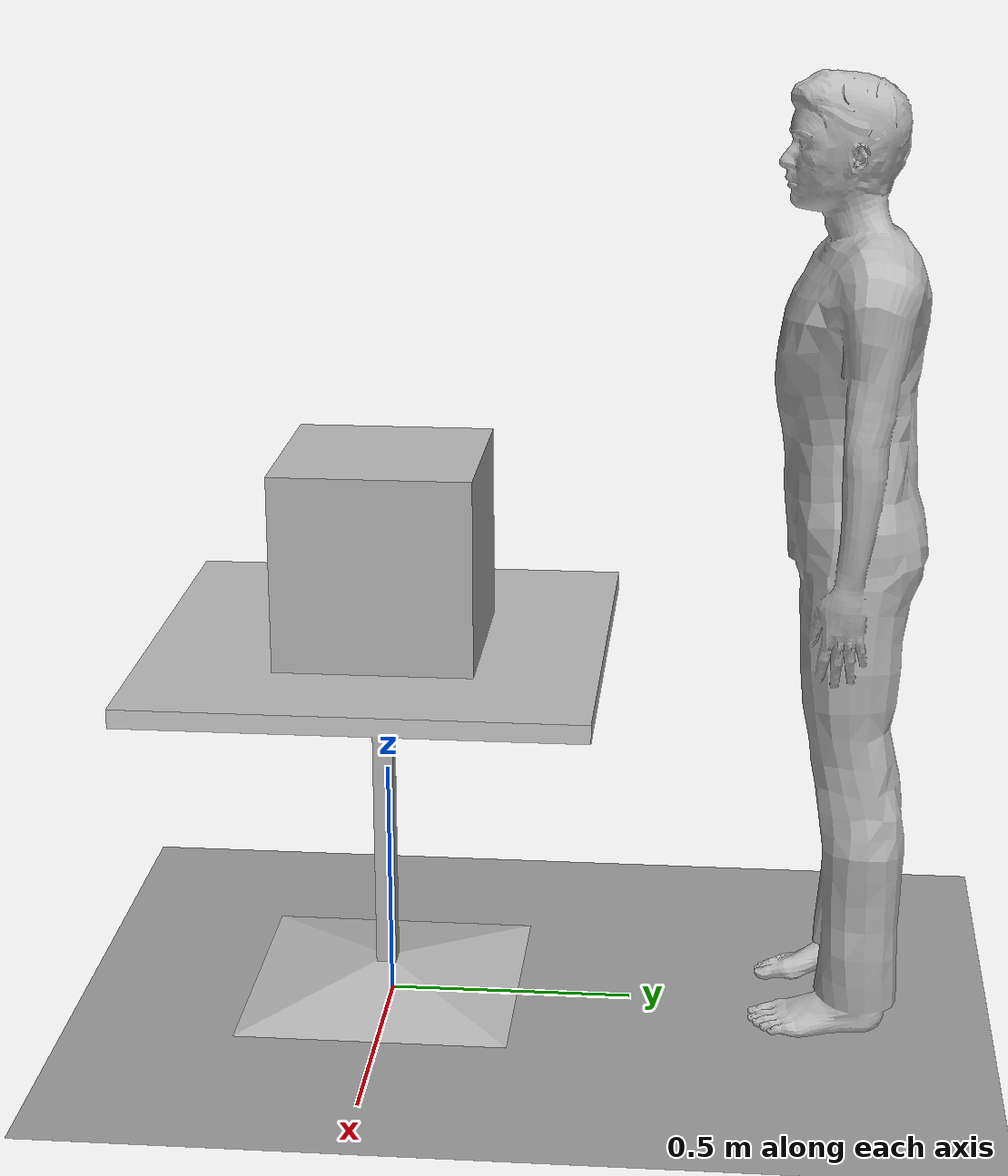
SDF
<sdf version="1.6">
 <world name="default">
  <light name="sun" type="directional">
   <pose>0 0 10 0 -0 0</pose>
   <diffuse>0.8 0.8 0.8 1</diffuse>
   <specular>0.1 0.1 0.1 1</specular>
   <attenuation>
    <range>1000</range>
    <constant>0.9</constant>
    <linear>0.01</linear>
    <quadratic>0.001</quadratic>
   </attenuation>
   <direction>-0.5 0.5 -1</direction>
  </light>
  <gravity>0 0 -9.8</gravity>
  <magnetic_field>6e-06 2.3e-05 -4.2e-05</magnetic_field>
  <atmosphere type="adiabatic"/>
  <physics name="default_physics" default="0" type="ode">
   <max_step_size>0.001</max_step_size>
   <real_time_factor>1</real_time_factor>
   <real_time_update_rate>1000</real_time_update_rate>
  </physics>
  <scene><ambient>0.4 0.4 0.4 1</ambient><background>0.7 0.7 0.7 1</background><shadows>1</shadows></scene>
  <spherical_coordinates>
   <surface_model>EARTH_WGS84</surface_model>
   <latitude_deg>0</latitude_deg>
   <longitude_deg>0</longitude_deg>
   <elevation>0</elevation>
   <heading_deg>0</heading_deg>
  </spherical_coordinates>
  <model name="cafe_table_1">
   <static>1</static>
   <link name="link">
    <collision name="surface">
     <pose>0 0 0.755 0 -0 0</pose>
     <geometry><box><size>0.913 0.913 0.04</size></box></geometry>
    </collision>
    <collision name="column">
     <pose>0 0 0.37 0 -0 0</pose>
     <geometry><box><size>0.042 0.042 0.74</size></box></geometry>
    </collision>
    <collision name="base">
     <pose>0 0 0.02 0 -0 0</pose>
     <geometry><box><size>0.56 0.56 0.04</size></box></geometry>
    </collision>
    <visual name="visual">
     <geometry><mesh><uri>model://cafe_table/meshes/cafe_table.dae</uri><scale>1 1 1</scale></mesh></geometry>
    </visual>
   </link>
   <pose>-0.032911 -0.014827 0 0 -0 0</pose>
  </model>
  <model name="person_standing">
   <link name="person_standing::person_standing::link">
    <inertial>
     <pose>0 -0.1 0.95 0 -0 0</pose>
     <mass>80</mass>
     <inertia><ixx>24.88</ixx><ixy>0</ixy><ixz>0</ixz><iyy>25.73</iyy><iyz>0</iyz><izz>2.48</izz></inertia>
    </inertial>
    <collision name="bottom">
     <pose>0 -0.1 0.01 0 -0 0</pose>
     <geometry><box><size>0.5 0.35 0.02</size></box></geometry>
    </collision>
    <collision name="person">
     <pose>0 0 0.02 0.04 -0 0</pose>
     <geometry><mesh><uri>model://person_standing/meshes/standing.dae</uri><scale>1 1 1</scale></mesh></geometry>
    </collision>
    <visual name="visual">
     <pose>0 0 0.02 0.04 -0 0</pose>
     <geometry><mesh><uri>model://person_standing/meshes/standing.dae</uri><scale>1 1 1</scale></mesh></geometry>
    </visual>
   </link>
   <pose>2.6e-05 1 0 0 -1e-06 -0.000258</pose>
  </model>
  <model name="ground_plane_0">
   <static>1</static>
   <link name="link">
    <collision name="collision">
     <geometry><plane><normal>0 0 1</normal><size>100 100</size></plane></geometry>
     <surface><friction><ode><mu>100</mu><mu2>50</mu2></ode></friction></surface>
    </collision>
    <visual name="visual">
     <cast_shadows>0</cast_shadows>
     <geometry><plane><normal>0 0 1</normal><size>100 100</size></plane></geometry>
     <material>
      <script><uri>file://media/materials/scripts/gazebo.material</uri><name>Gazebo/Grey</name></script>
     </material>
    </visual>
   </link>
  </model>
  <model name="cardboard_box">
   <pose>0 -6.2e-05 0.924 0 0 -3.8e-05</pose>
   <link name="link">
    <inertial>
     <mass>2</mass>
     <inertia>
      <ixx>0.0416667</ixx>
      <ixy>0</ixy>
      <ixz>0</ixz>
      <iyy>0.0566667</iyy>
      <iyz>0</iyz>
      <izz>0.0683333</izz>
     </inertia>
    </inertial>
    <collision name="collision">
     <geometry><box><size>0.5 0.4 0.3</size></box></geometry>
     <surface>
      <friction><ode><mu>1</mu><mu2>1</mu2></ode></friction>
      <contact><ode><kp>1e+07</kp><kd>1</kd><min_depth>0.001</min_depth><max_vel>0.1</max_vel></ode></contact>
     </surface>
    </collision>
    <visual name="visual">
     <pose>0 0 -0.15 0 -0 0</pose>
     <geometry>
      <mesh><uri>model://cardboard_box/meshes/cardboard_box.dae</uri><scale>1 1 1</scale></mesh>
     </geometry>
    </visual>
   </link>
  </model>
 </world>
</sdf>
